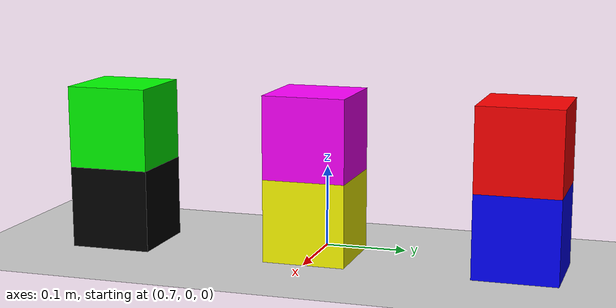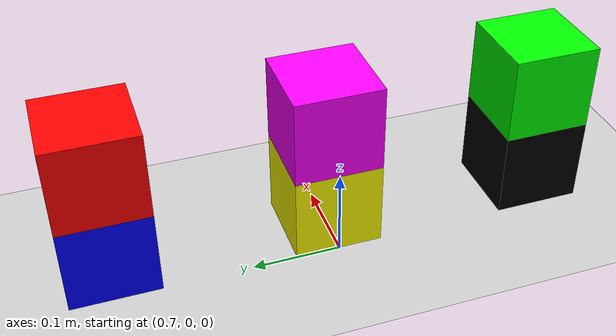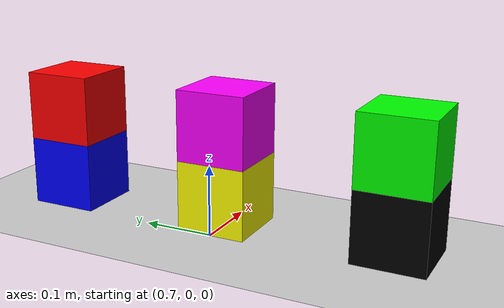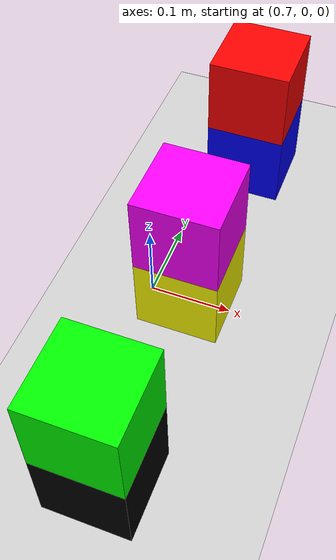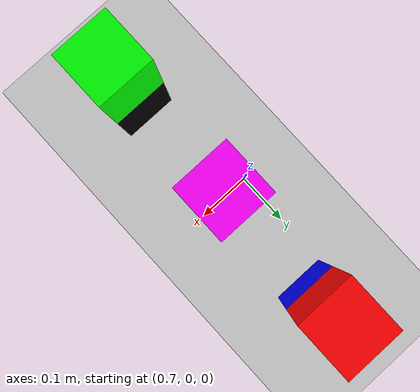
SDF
<?xml version="1.0" ?>
<sdf version="1.6">
  <!-- We use a custom world for the rrbot so that the camera angle is launched correctly -->

  <world name="blocksworld">

    <!-- Physics settings to disable gravity -->
    <!-- Set gravity to zero for Gazebo Ignition -->
    <gravity>0 0 -0.1</gravity>

      <!-- Included light -->
    <include>
      <uri>https://fuel.gazebosim.org/1.0/OpenRobotics/models/Sun</uri>
    </include>

    <!-- Included model -->
    <include>
      <uri>https://fuel.gazebosim.org/1.0/OpenRobotics/models/Ground Plane</uri>
    </include>

    <include>
      <uri> model://red_blocks</uri>
      <name>block_a</name>
      <pose>0.75 0.25 0.15 0 0 0</pose>
    </include>

    <include>
      <uri> model://green_blocks</uri>
      <name>block_b</name>
      <pose>0.75 -0.25 0.15 0 0 0</pose>
    </include>

    <include>
      <uri> model://blue_blocks</uri>
      <name>block_c</name>
      <pose>0.75 0.25 0.05 0 0 0</pose>
    </include>

    <include>
      <uri> model://black_blocks</uri>
      <name>block_d</name>
      <pose>0.75 -0.25 0.05 0 0 0</pose>
    </include>

    <include>
      <uri>model://white_blocks</uri>
      <name>block_e</name>
      <pose>0.75 0 0.15 0 0 0</pose>
    </include>

    <include>
      <uri> model://yellow_blocks</uri>
      <name>block_f</name>
      <pose>0.75 0 0.05 0 0 0</pose>
    </include>
  </world>
</sdf>

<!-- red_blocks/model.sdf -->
<sdf version="1.6">
  <model name="blocks">
    <static>false</static>
    <link name="link">
      <!-- Inertial properties (optional but recommended) -->
      <inertial>
        <mass>0.5</mass>
        <inertia>
          <ixx>0.000333</ixx>
          <iyy>0.000333</iyy>
          <izz>0.000333</izz>
          <ixy>0</ixy><ixz>0</ixz><iyz>0</iyz>
        </inertia>
      </inertial>

      <collision name="collision">
        <geometry>
          <box>
            <size>0.1 0.1 0.1</size>
          </box>
        </geometry>

        <!-- HIGH FRICTION / ZERO BOUNCE -->
        <surface>
          <friction>
            <ode>
              <!-- High mu to resist sliding when placing -->
              <mu>1.0</mu>
              <mu2>1.0</mu2>
            </ode>
          </friction>
          <bounce>
            <!-- No restitution so it won’t bounce -->
            <restitution_coefficient>0.0</restitution_coefficient>
            <threshold>100.0</threshold>
          </bounce>
          <!-- Optional: soft contact to damp vibration -->
          <contact>
            <ode>
              <kp>1e5</kp>        <!-- contact stiffness -->
              <kd>1e3</kd>        <!-- contact damping -->
              <max_vel>0.1</max_vel>
              <min_depth>0.001</min_depth>
            </ode>
          </contact>
        </surface>
      </collision>

      <visual name="visual">
        <geometry>
          <box>
            <size>0.1 0.1 0.1</size>
          </box>
        </geometry>

      <material>
        <ambient>1 0 0 1</ambient>  <!-- Red -->
        <diffuse>1 0 0 1</diffuse>
        <specular>0.1 0.1 0.1 1</specular>
        <emissive>0 0 0 1</emissive>
      </material>

      </visual>
    </link>
  </model>
</sdf>

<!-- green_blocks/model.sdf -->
<sdf version="1.6">
  <model name="blocks">
    <static>false</static>
    <link name="link">

      <!-- Inertial properties (optional but recommended) -->
      <inertial>
        <mass>0.5</mass>
        <inertia>
          <ixx>0.000333</ixx>
          <iyy>0.000333</iyy>
          <izz>0.000333</izz>
          <ixy>0</ixy><ixz>0</ixz><iyz>0</iyz>
        </inertia>
      </inertial>

      <collision name="collision">
        <geometry>
          <box>
            <size>0.1 0.1 0.1</size>
          </box>
        </geometry>

        <!-- HIGH FRICTION / ZERO BOUNCE -->
        <surface>
          <friction>
            <ode>
              <!-- High mu to resist sliding when placing -->
              <mu>1.0</mu>
              <mu2>1.0</mu2>
            </ode>
          </friction>
          <bounce>
            <!-- No restitution so it won’t bounce -->
            <restitution_coefficient>0.0</restitution_coefficient>
            <threshold>100.0</threshold>
          </bounce>
          <!-- Optional: soft contact to damp vibration -->
          <contact>
            <ode>
              <kp>1e5</kp>        <!-- contact stiffness -->
              <kd>1e3</kd>        <!-- contact damping -->
              <max_vel>0.1</max_vel>
              <min_depth>0.001</min_depth>
            </ode>
          </contact>
        </surface>
      </collision>

      <visual name="visual">
        <geometry>
          <box>
            <size>0.1 0.1 0.1</size>
          </box>
        </geometry>

        <material>
          <ambient>0 1 0 1</ambient>   <!-- Green -->
          <diffuse>0 1 0 1</diffuse>
          <specular>0.1 0.1 0.1 1</specular>
          <emissive>0 0 0 1</emissive>
        </material>

      </visual>
    </link>
  </model>
</sdf>

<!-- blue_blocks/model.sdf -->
<sdf version="1.6">
  <model name="blocks">
    <static>false</static>
    <link name="link">

      <!-- Inertial properties (optional but recommended) -->
      <inertial>
        <mass>0.5</mass>
        <inertia>
          <ixx>0.000333</ixx>
          <iyy>0.000333</iyy>
          <izz>0.000333</izz>
          <ixy>0</ixy><ixz>0</ixz><iyz>0</iyz>
        </inertia>
      </inertial>

      <collision name="collision">
        <geometry>
          <box>
            <size>0.1 0.1 0.1</size>
          </box>
        </geometry>

        <!-- HIGH FRICTION / ZERO BOUNCE -->
        <surface>
          <friction>
            <ode>
              <!-- High mu to resist sliding when placing -->
              <mu>1.0</mu>
              <mu2>1.0</mu2>
            </ode>
          </friction>
          <bounce>
            <!-- No restitution so it won’t bounce -->
            <restitution_coefficient>0.0</restitution_coefficient>
            <threshold>100.0</threshold>
          </bounce>
          <!-- Optional: soft contact to damp vibration -->
          <contact>
            <ode>
              <kp>1e5</kp>        <!-- contact stiffness -->
              <kd>1e3</kd>        <!-- contact damping -->
              <max_vel>0.1</max_vel>
              <min_depth>0.001</min_depth>
            </ode>
          </contact>
        </surface>
      </collision>

      <visual name="visual">
        <geometry>
          <box>
            <size>0.1 0.1 0.1</size>
          </box>
        </geometry>

        <material>
          <ambient>0 0 1 1</ambient>   <!-- Blue -->
          <diffuse>0 0 1 1</diffuse>
          <specular>0.1 0.1 0.1 1</specular>
          <emissive>0 0 0 1</emissive>
        </material>
      </visual>
    </link>
  </model>
</sdf>

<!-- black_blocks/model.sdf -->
<sdf version="1.6">
  <model name="blocks">
    <static>false</static>
    <link name="link">

      <!-- Inertial properties (optional but recommended) -->
      <inertial>
        <mass>0.5</mass>
        <inertia>
          <ixx>0.000333</ixx>
          <iyy>0.000333</iyy>
          <izz>0.000333</izz>
          <ixy>0</ixy><ixz>0</ixz><iyz>0</iyz>
        </inertia>
      </inertial>

      <collision name="collision">
        <geometry>
          <box>
            <size>0.1 0.1 0.1</size>
          </box>
        </geometry>

        <!-- HIGH FRICTION / ZERO BOUNCE -->
        <surface>
          <friction>
            <ode>
              <!-- High mu to resist sliding when placing -->
              <mu>1.0</mu>
              <mu2>1.0</mu2>
            </ode>
          </friction>
          <bounce>
            <!-- No restitution so it won’t bounce -->
            <restitution_coefficient>0.0</restitution_coefficient>
            <threshold>100.0</threshold>
          </bounce>
          <!-- Optional: soft contact to damp vibration -->
          <contact>
            <ode>
              <kp>1e5</kp>        <!-- contact stiffness -->
              <kd>1e3</kd>        <!-- contact damping -->
              <max_vel>0.1</max_vel>
              <min_depth>0.001</min_depth>
            </ode>
          </contact>
        </surface>
      </collision>

      <visual name="visual">
        <geometry>
          <box>
            <size>0.1 0.1 0.1</size>
          </box>
        </geometry>

        <material>
          <ambient>0 0 0 1</ambient>   <!-- Black -->
          <diffuse>0 0 0 1</diffuse>
          <specular>0.1 0.1 0.1 1</specular>
          <emissive>0 0 0 1</emissive>
        </material>
      </visual>
    </link>
  </model>
</sdf>

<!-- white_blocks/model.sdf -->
<sdf version="1.6">
  <model name="blocks">
    <static>false</static>
    <link name="link">

      <!-- Inertial properties (optional but recommended) -->
      <inertial>
        <mass>0.5</mass>
        <inertia>
          <ixx>0.000333</ixx>
          <iyy>0.000333</iyy>
          <izz>0.000333</izz>
          <ixy>0</ixy><ixz>0</ixz><iyz>0</iyz>
        </inertia>
      </inertial>

      <collision name="collision">
        <geometry>
          <box>
            <size>0.1 0.1 0.1</size>
          </box>
        </geometry>

        <!-- HIGH FRICTION / ZERO BOUNCE -->
        <surface>
          <friction>
            <ode>
              <!-- High mu to resist sliding when placing -->
              <mu>1.0</mu>
              <mu2>1.0</mu2>
            </ode>
          </friction>
          <bounce>
            <!-- No restitution so it won’t bounce -->
            <restitution_coefficient>0.0</restitution_coefficient>
            <threshold>100.0</threshold>
          </bounce>
          <!-- Optional: soft contact to damp vibration -->
          <contact>
            <ode>
              <kp>1e5</kp>        <!-- contact stiffness -->
              <kd>1e3</kd>        <!-- contact damping -->
              <max_vel>0.1</max_vel>
              <min_depth>0.001</min_depth>
            </ode>
          </contact>
        </surface>
      </collision>

      <visual name="visual">
        <geometry>
          <box>
            <size>0.1 0.1 0.1</size>
          </box>
        </geometry>

        <material>
          <ambient>1 0 1 1</ambient>   <!-- Magenta -->
          <diffuse>1 0 1 1</diffuse>
          <specular>0.1 0.1 0.1 1</specular>
          <emissive>0 0 0 1</emissive>
        </material>
      </visual>
    </link>
  </model>
</sdf>

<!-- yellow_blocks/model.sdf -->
<sdf version="1.6">
  <model name="blocks">
    <static>false</static>
    <link name="link">
      <!-- Inertial properties (optional but recommended) -->
      <inertial>
        <mass>0.5</mass>
        <inertia>
          <ixx>0.000333</ixx>
          <iyy>0.000333</iyy>
          <izz>0.000333</izz>
          <ixy>0</ixy><ixz>0</ixz><iyz>0</iyz>
        </inertia>
      </inertial>

      <collision name="collision">
        <geometry>
          <box>
            <size>0.1 0.1 0.1</size>
          </box>
        </geometry>

        <!-- HIGH FRICTION / ZERO BOUNCE -->
        <surface>
          <friction>
            <ode>
              <!-- High mu to resist sliding when placing -->
              <mu>1.0</mu>
              <mu2>1.0</mu2>
            </ode>
          </friction>
          <bounce>
            <!-- No restitution so it won’t bounce -->
            <restitution_coefficient>0.0</restitution_coefficient>
            <threshold>100.0</threshold>
          </bounce>
          <!-- Optional: soft contact to damp vibration -->
          <contact>
            <ode>
              <kp>1e5</kp>        <!-- contact stiffness -->
              <kd>1e3</kd>        <!-- contact damping -->
              <max_vel>0.1</max_vel>
              <min_depth>0.001</min_depth>
            </ode>
          </contact>
        </surface>
      </collision>

      <visual name="visual">
        <geometry>
          <box>
            <size>0.1 0.1 0.1</size>
          </box>
        </geometry>

        <material>
          <ambient>1 1 0 1</ambient>   <!-- Yellow -->
          <diffuse>1 1 0 1</diffuse>
          <specular>0.1 0.1 0.1 1</specular>
          <emissive>0 0 0 1</emissive>
        </material>
      </visual>
    </link>
    <plugin
    filename="libpose_relay_plugin.so"
    name="my_sim_plugins::PoseRelayPlugin"/>
  </model>
</sdf>
